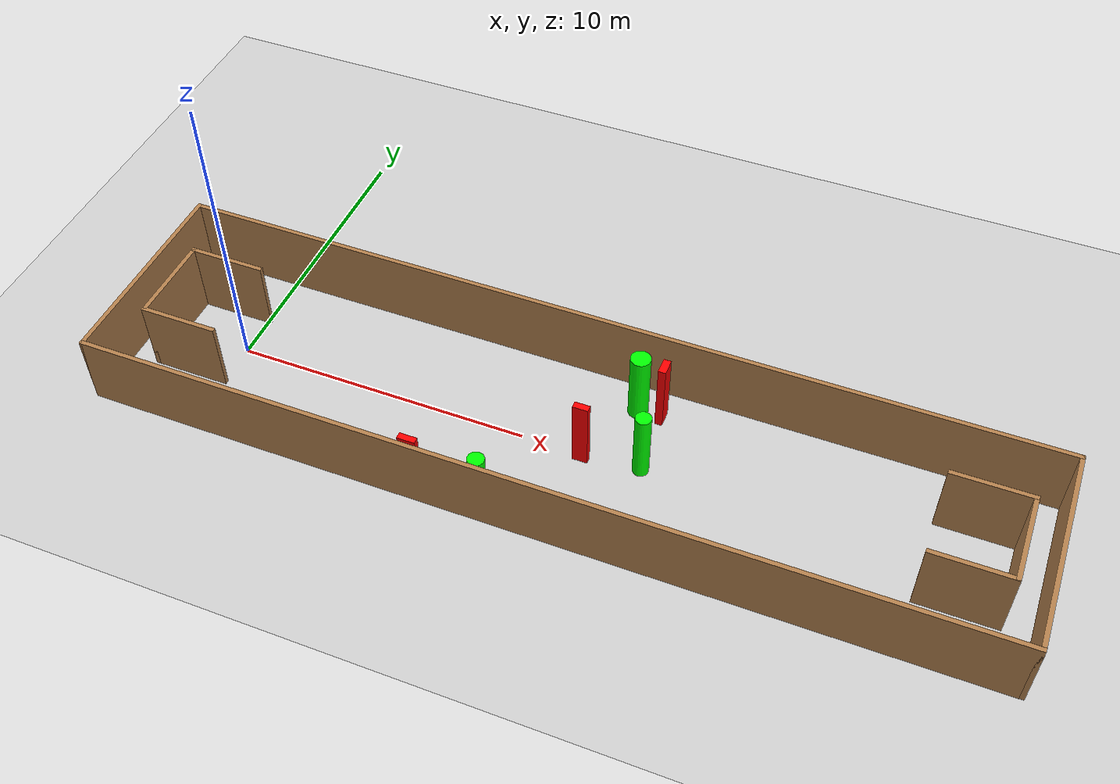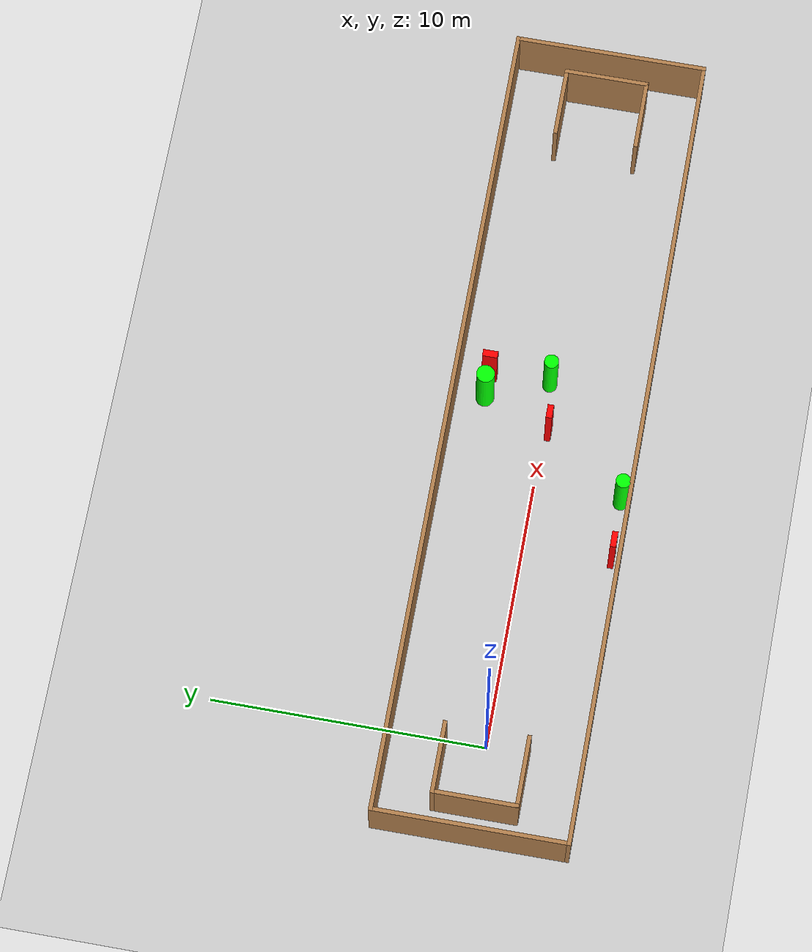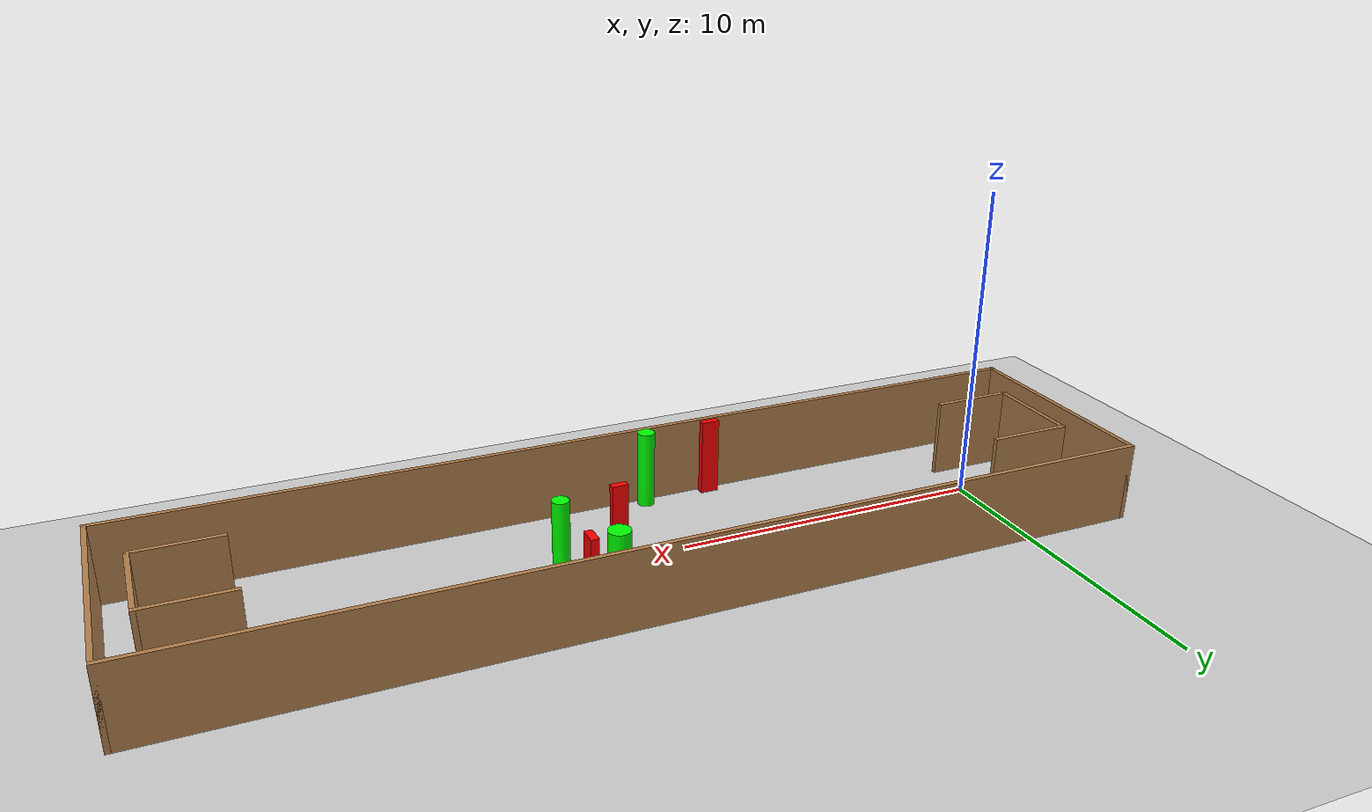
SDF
<sdf version="1.7">
 <world name="default">
  <light name="sun" type="directional">
   <pose>0 0 10 0 -0 0</pose>
   <diffuse>0.8 0.8 0.8 1</diffuse>
   <specular>0.2 0.2 0.2 1</specular>
   <attenuation>
    <range>1000</range>
    <constant>0.9</constant>
    <linear>0.01</linear>
    <quadratic>0.001</quadratic>
   </attenuation>
   <direction>-0.5 0.1 -0.9</direction>
   <spot><inner_angle>0</inner_angle><outer_angle>0</outer_angle><falloff>0</falloff></spot>
  </light>
  <model name="ground_plane">
   <static>1</static>
   <link name="link">
    <collision name="collision">
     <geometry><plane><normal>0 0 1</normal><size>100 100</size></plane></geometry>
     <surface>
      <contact><collide_bitmask>65535</collide_bitmask></contact>
      <friction><ode><mu>100</mu><mu2>50</mu2></ode></friction>
     </surface>
    </collision>
    <visual name="visual">
     <cast_shadows>0</cast_shadows>
     <geometry><plane><normal>0 0 1</normal><size>100 100</size></plane></geometry>
     <material>
      <script><uri>file://media/materials/scripts/gazebo.material</uri><name>Gazebo/Grey</name></script>
     </material>
    </visual>
   </link>
  </model>
  <gravity>0 0 -9.8</gravity>
  <magnetic_field>6e-06 2.3e-05 -4.2e-05</magnetic_field>
  <atmosphere type="adiabatic"/>
  <physics type="ode">
   <max_step_size>0.001</max_step_size>
   <real_time_factor>1</real_time_factor>
   <real_time_update_rate>1000</real_time_update_rate>
  </physics>
  <scene><ambient>0.4 0.4 0.4 1</ambient><background>0.7 0.7 0.7 1</background><shadows>1</shadows></scene>
  <spherical_coordinates>
   <surface_model>EARTH_WGS84</surface_model>
   <latitude_deg>0</latitude_deg>
   <longitude_deg>0</longitude_deg>
   <elevation>0</elevation>
   <heading_deg>0</heading_deg>
  </spherical_coordinates>
  <model name="my_base_walls">
   <link name="Wall_0">
    <collision name="Wall_0_Collision">
     <geometry><box><size>7.15 0.15 2.5</size></box></geometry>
     <pose>0 0 1.25 0 -0 0</pose>
    </collision>
    <visual name="Wall_0_Visual">
     <pose>0 0 1.25 0 -0 0</pose>
     <geometry><box><size>7.15 0.15 2.5</size></box></geometry>
     <material>
      <script><uri>file://media/materials/scripts/gazebo.material</uri><name>Gazebo/Wood</name></script>
      <ambient>1 1 1 1</ambient>
     </material>
     <meta><layer>0</layer></meta>
    </visual>
    <pose>-15 0 0 0 -0 1.5708</pose>
   </link>
   <link name="Wall_10">
    <collision name="Wall_10_Collision">
     <geometry><box><size>2.65 0.15 2.5</size></box></geometry>
     <pose>0 0 1.25 0 -0 0</pose>
    </collision>
    <visual name="Wall_10_Visual">
     <pose>0 0 1.25 0 -0 0</pose>
     <geometry><box><size>2.65 0.15 2.5</size></box></geometry>
     <material>
      <script><uri>file://media/materials/scripts/gazebo.material</uri><name>Gazebo/Wood</name></script>
      <ambient>1 1 1 1</ambient>
     </material>
     <meta><layer>0</layer></meta>
    </visual>
    <pose>-12.75 -1.5 0 0 -0 0</pose>
   </link>
   <link name="Wall_12">
    <collision name="Wall_12_Collision">
     <geometry><box><size>2.65 0.15 2.5</size></box></geometry>
     <pose>0 0 1.25 0 -0 0</pose>
    </collision>
    <visual name="Wall_12_Visual">
     <pose>0 0 1.25 0 -0 0</pose>
     <geometry><box><size>2.65 0.15 2.5</size></box></geometry>
     <material>
      <script><uri>file://media/materials/scripts/gazebo.material</uri><name>Gazebo/Wood</name></script>
      <ambient>1 1 1 1</ambient>
     </material>
     <meta><layer>0</layer></meta>
    </visual>
    <pose>-12.75 1.5 0 0 -0 0</pose>
   </link>
   <link name="Wall_14">
    <collision name="Wall_14_Collision">
     <geometry><box><size>3.15 0.15 2.5</size></box></geometry>
     <pose>0 0 1.25 0 -0 0</pose>
    </collision>
    <visual name="Wall_14_Visual">
     <pose>0 0 1.25 0 -0 0</pose>
     <geometry><box><size>3.15 0.15 2.5</size></box></geometry>
     <material>
      <script><uri>file://media/materials/scripts/gazebo.material</uri><name>Gazebo/Wood</name></script>
      <ambient>1 1 1 1</ambient>
     </material>
     <meta><layer>0</layer></meta>
    </visual>
    <pose>14 0 0 0 -0 -1.5708</pose>
   </link>
   <link name="Wall_15">
    <collision name="Wall_15_Collision">
     <geometry><box><size>2.65 0.15 2.5</size></box></geometry>
     <pose>0 0 1.25 0 -0 0</pose>
    </collision>
    <visual name="Wall_15_Visual">
     <pose>0 0 1.25 0 -0 0</pose>
     <geometry><box><size>2.65 0.15 2.5</size></box></geometry>
     <material>
      <script><uri>file://media/materials/scripts/gazebo.material</uri><name>Gazebo/Wood</name></script>
      <ambient>1 1 1 1</ambient>
     </material>
     <meta><layer>0</layer></meta>
    </visual>
    <pose>12.75 -1.5 0 0 -0 3.14159</pose>
   </link>
   <link name="Wall_17">
    <collision name="Wall_17_Collision">
     <geometry><box><size>2.65 0.15 2.5</size></box></geometry>
     <pose>0 0 1.25 0 -0 0</pose>
    </collision>
    <visual name="Wall_17_Visual">
     <pose>0 0 1.25 0 -0 0</pose>
     <geometry><box><size>2.65 0.15 2.5</size></box></geometry>
     <material>
      <script><uri>file://media/materials/scripts/gazebo.material</uri><name>Gazebo/Wood</name></script>
      <ambient>1 1 1 1</ambient>
     </material>
     <meta><layer>0</layer></meta>
    </visual>
    <pose>12.75 1.5 0 0 -0 3.14159</pose>
   </link>
   <link name="Wall_2">
    <collision name="Wall_2_Collision">
     <geometry><box><size>30.15 0.15 2.5</size></box></geometry>
     <pose>0 0 1.25 0 -0 0</pose>
    </collision>
    <visual name="Wall_2_Visual">
     <pose>0 0 1.25 0 -0 0</pose>
     <geometry><box><size>30.15 0.15 2.5</size></box></geometry>
     <material>
      <script><uri>file://media/materials/scripts/gazebo.material</uri><name>Gazebo/Wood</name></script>
      <ambient>1 1 1 1</ambient>
     </material>
     <meta><layer>0</layer></meta>
    </visual>
    <pose>-0 -3.5 0 0 -0 0</pose>
   </link>
   <link name="Wall_4">
    <collision name="Wall_4_Collision">
     <geometry><box><size>30.15 0.15 2.5</size></box></geometry>
     <pose>0 0 1.25 0 -0 0</pose>
    </collision>
    <visual name="Wall_4_Visual">
     <pose>0 0 1.25 0 -0 0</pose>
     <geometry><box><size>30.15 0.15 2.5</size></box></geometry>
     <material>
      <script><uri>file://media/materials/scripts/gazebo.material</uri><name>Gazebo/Wood</name></script>
      <ambient>1 1 1 1</ambient>
     </material>
     <meta><layer>0</layer></meta>
    </visual>
    <pose>-0 3.5 0 0 -0 0</pose>
   </link>
   <link name="Wall_6">
    <collision name="Wall_6_Collision">
     <geometry><box><size>7.15 0.15 2.5</size></box></geometry>
     <pose>0 0 1.25 0 -0 0</pose>
    </collision>
    <visual name="Wall_6_Visual">
     <pose>0 0 1.25 0 -0 0</pose>
     <geometry><box><size>7.15 0.15 2.5</size></box></geometry>
     <material>
      <script><uri>file://media/materials/scripts/gazebo.material</uri><name>Gazebo/Wood</name></script>
      <ambient>1 1 1 1</ambient>
     </material>
     <meta><layer>0</layer></meta>
    </visual>
    <pose>15 0 0 0 -0 -1.5708</pose>
   </link>
   <link name="Wall_9">
    <collision name="Wall_9_Collision">
     <geometry><box><size>3.15 0.15 2.5</size></box></geometry>
     <pose>0 0 1.25 0 -0 0</pose>
    </collision>
    <visual name="Wall_9_Visual">
     <pose>0 0 1.25 0 -0 0</pose>
     <geometry><box><size>3.15 0.15 2.5</size></box></geometry>
     <material>
      <script><uri>file://media/materials/scripts/gazebo.material</uri><name>Gazebo/Wood</name></script>
      <ambient>1 1 1 1</ambient>
     </material>
     <meta><layer>0</layer></meta>
    </visual>
    <pose>-14 0 0 0 -0 -1.5708</pose>
   </link>
   <static>1</static>
   <pose>11.5 0 0 0 -0 0</pose>
  </model>
  <model name="cylinder1">
   <static>1</static>
   <link name="link">
    <inertial>
     <mass>1</mass>
     <inertia><ixx>0.5</ixx><ixy>0</ixy><ixz>0</ixz><iyy>0.5</iyy><iyz>0</iyz><izz>1</izz></inertia>
    </inertial>
    <collision name="collision">
     <geometry><cylinder><radius>0.2723118186377054</radius><length>2.5</length></cylinder></geometry>
    </collision>
    <visual name="visual">
     <geometry><cylinder><radius>0.2723118186377054</radius><length>2.5</length></cylinder></geometry>
     <material>
      <ambient>0 1 0 1</ambient>
      <diffuse>0 1 0 1</diffuse>
      <specular>0.1 0.1 0.1 1</specular>
      <emissive>0 0 0 0</emissive>
     </material>
    </visual>
   </link>
   <pose>9.951966680176453 -3.19407757948423 1.25 0 0 0</pose>
  </model>
  <model name="cylinder2">
   <static>1</static>
   <link name="link">
    <inertial>
     <mass>1</mass>
     <inertia><ixx>0.5</ixx><ixy>0</ixy><ixz>0</ixz><iyy>0.5</iyy><iyz>0</iyz><izz>1</izz></inertia>
    </inertial>
    <collision name="collision">
     <geometry><cylinder><radius>0.2640768863691014</radius><length>2.5</length></cylinder></geometry>
    </collision>
    <visual name="visual">
     <geometry><cylinder><radius>0.2640768863691014</radius><length>2.5</length></cylinder></geometry>
     <material>
      <ambient>0 1 0 1</ambient>
      <diffuse>0 1 0 1</diffuse>
      <specular>0.1 0.1 0.1 1</specular>
      <emissive>0 0 0 0</emissive>
     </material>
    </visual>
   </link>
   <pose>13.998945169843388 0.10852779465583584 1.25 0 0 0</pose>
  </model>
  <model name="cylinder3">
   <static>1</static>
   <link name="link">
    <inertial>
     <mass>1</mass>
     <inertia><ixx>0.5</ixx><ixy>0</ixy><ixz>0</ixz><iyy>0.5</iyy><iyz>0</iyz><izz>1</izz></inertia>
    </inertial>
    <collision name="collision">
     <geometry><cylinder><radius>0.33560092706719263</radius><length>2.5</length></cylinder></geometry>
    </collision>
    <visual name="visual">
     <geometry><cylinder><radius>0.33560092706719263</radius><length>2.5</length></cylinder></geometry>
     <material>
      <ambient>0 1 0 1</ambient>
      <diffuse>0 1 0 1</diffuse>
      <specular>0.1 0.1 0.1 1</specular>
      <emissive>0 0 0 0</emissive>
     </material>
    </visual>
   </link>
   <pose>13.102030631773857 2.372534576731283 1.25 0 0 0</pose>
  </model>
  <model name="box1">
   <static>1</static>
   <link name="link">
    <inertial>
     <mass>1</mass>
     <inertia><ixx>0.083</ixx><ixy>0</ixy><ixz>0</ixz><iyy>0.083</iyy><iyz>0</iyz><izz>0.083</izz></inertia>
    </inertial>
    <collision name="collision">
     <geometry><box><size>0.5855957822437194 0.2146067288753671 2.5</size></box></geometry>
    </collision>
    <visual name="visual">
     <geometry><box><size>0.5855957822437194 0.2146067288753671 2.5</size></box></geometry>
     <material>
      <ambient>1 0 0 1</ambient>
      <diffuse>1 0 0 1</diffuse>
      <specular>0.1 0.1 0.1 1</specular>
      <emissive>0 0 0 0</emissive>
     </material>
    </visual>
    <sensor name="my_contact" type="contact">
     <contact><collision>box_collision</collision><topic>__default_topic__</topic></contact>
    </sensor>
   </link>
   <pose>7.723816803176161 -3.2243764090058447 1.25 0 0 0</pose>
  </model>
  <model name="box2">
   <static>1</static>
   <link name="link">
    <inertial>
     <mass>1</mass>
     <inertia><ixx>0.083</ixx><ixy>0</ixy><ixz>0</ixz><iyy>0.083</iyy><iyz>0</iyz><izz>0.083</izz></inertia>
    </inertial>
    <collision name="collision">
     <geometry><box><size>0.25267537678716673 0.5495030502879867 2.5</size></box></geometry>
    </collision>
    <visual name="visual">
     <geometry><box><size>0.25267537678716673 0.5495030502879867 2.5</size></box></geometry>
     <material>
      <ambient>1 0 0 1</ambient>
      <diffuse>1 0 0 1</diffuse>
      <specular>0.1 0.1 0.1 1</specular>
      <emissive>0 0 0 0</emissive>
     </material>
    </visual>
    <sensor name="my_contact" type="contact">
     <contact><collision>box_collision</collision><topic>__default_topic__</topic></contact>
    </sensor>
   </link>
   <pose>13.901689152722232 2.3417483157236516 1.25 0 0 0</pose>
  </model>
  <model name="box3">
   <static>1</static>
   <link name="link">
    <inertial>
     <mass>1</mass>
     <inertia><ixx>0.083</ixx><ixy>0</ixy><ixz>0</ixz><iyy>0.083</iyy><iyz>0</iyz><izz>0.083</izz></inertia>
    </inertial>
    <collision name="collision">
     <geometry><box><size>0.5015248694165904 0.22456618065255185 2.5</size></box></geometry>
    </collision>
    <visual name="visual">
     <geometry><box><size>0.5015248694165904 0.22456618065255185 2.5</size></box></geometry>
     <material>
      <ambient>1 0 0 1</ambient>
      <diffuse>1 0 0 1</diffuse>
      <specular>0.1 0.1 0.1 1</specular>
      <emissive>0 0 0 0</emissive>
     </material>
    </visual>
    <sensor name="my_contact" type="contact">
     <contact><collision>box_collision</collision><topic>__default_topic__</topic></contact>
    </sensor>
   </link>
   <pose>12.095316221847972 -0.15626484694040244 1.25 0 0 0</pose>
  </model>
 </world>
</sdf>
